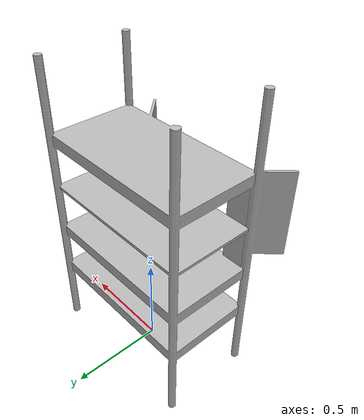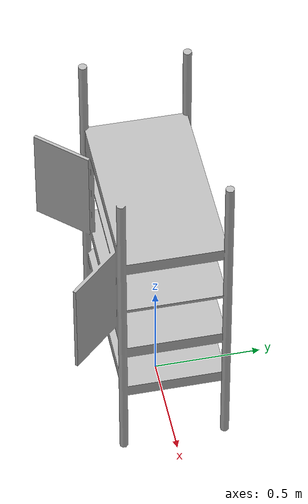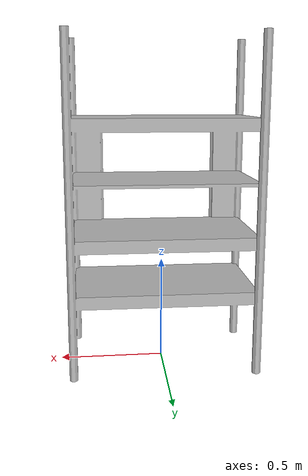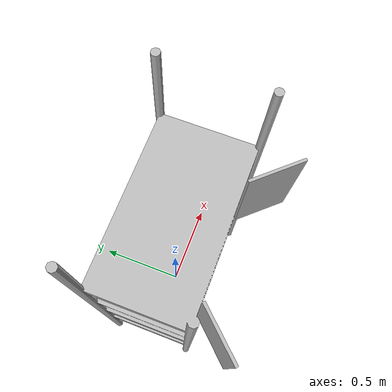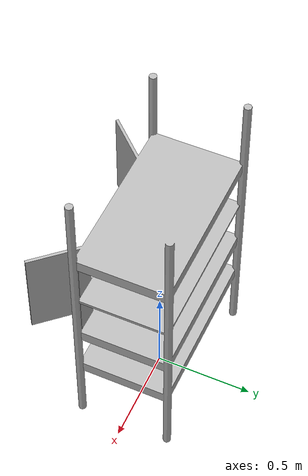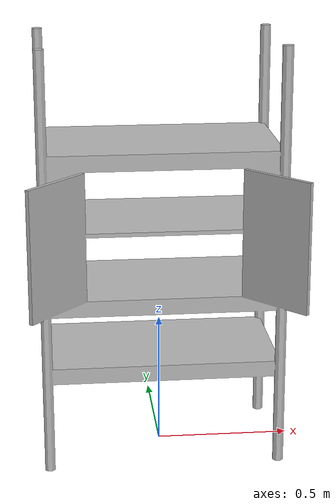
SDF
<?xml version="1.0" ?>
<sdf version="1.6">
  <model name="rc2025_shelf">
    <static>true</static>
    <link name="link">
      <visual name="visual">
        <geometry>
          <mesh>
            <uri>model://rc2025_shelf/meshes/RC2025_shelf_doors.dae</uri>
          </mesh>
        </geometry>
      </visual>
      <collision name="collision">
        <geometry>
          <mesh>
            <uri>model://rc2025_shelf/meshes/RC2025_shelf_doors.dae</uri>
          </mesh>
        </geometry>
      </collision>
    </link>
  </model>
</sdf>
